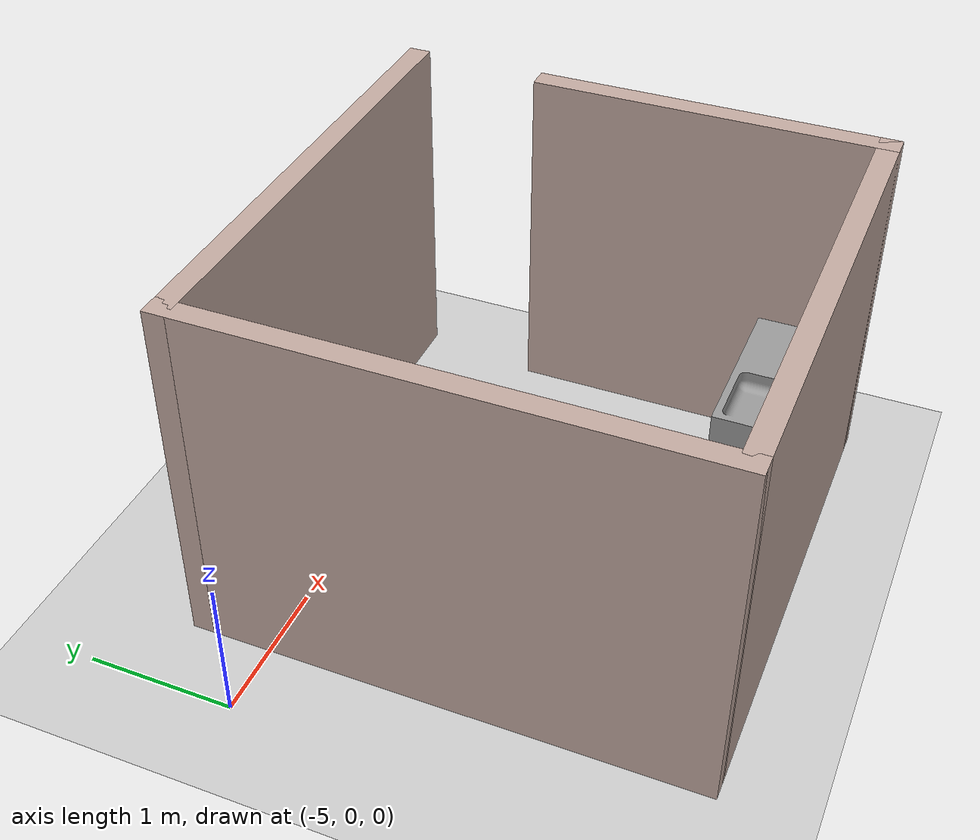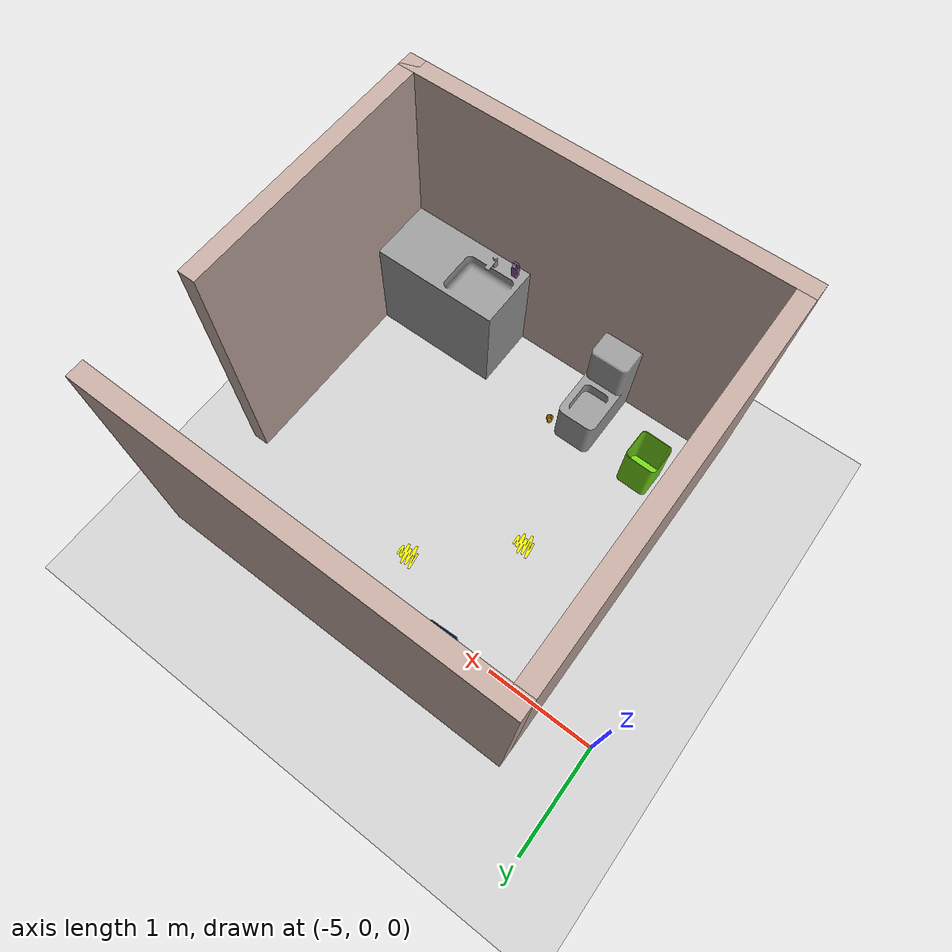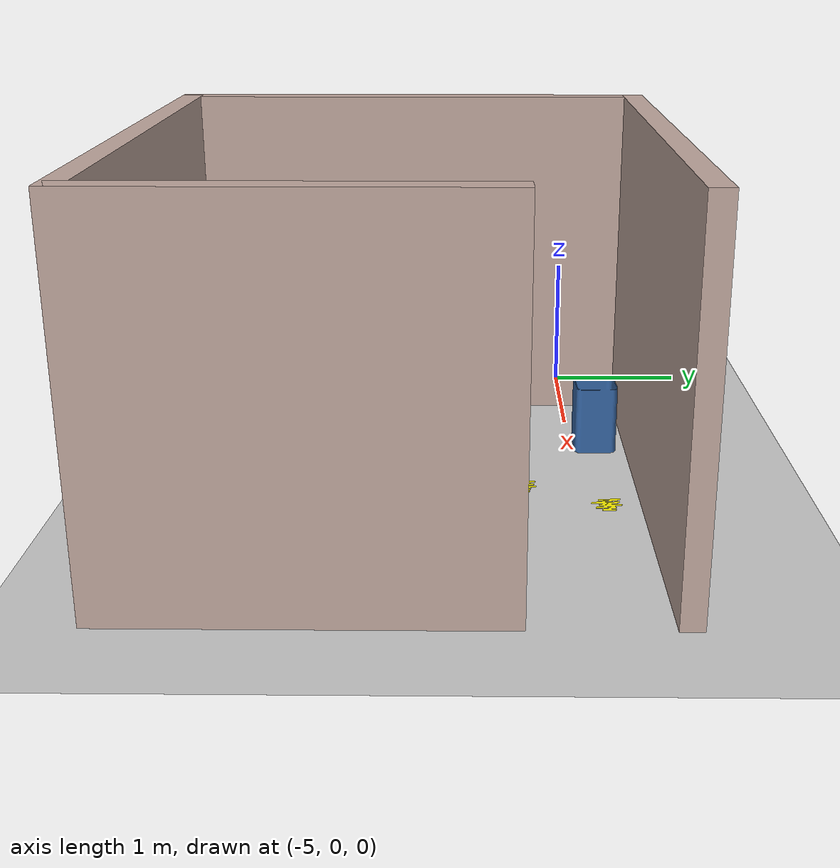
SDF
<sdf version="1.7">
 <world name="default">
  <light name="sun" type="directional">
   <pose>0 0 10 0 -0 0</pose>
   <diffuse>0.8 0.8 0.8 1</diffuse>
   <specular>0.2 0.2 0.2 1</specular>
   <attenuation>
    <range>1000</range>
    <constant>0.9</constant>
    <linear>0.01</linear>
    <quadratic>0.001</quadratic>
   </attenuation>
   <direction>-0.5 0.1 -0.9</direction>
   <spot><inner_angle>0</inner_angle><outer_angle>0</outer_angle><falloff>0</falloff></spot>
  </light>
  <model name="ground_plane">
   <static>1</static>
   <link name="link">
    <collision name="collision">
     <geometry><plane><normal>0 0 1</normal><size>100 100</size></plane></geometry>
     <surface>
      <contact><collide_bitmask>65535</collide_bitmask></contact>
      <friction><ode><mu>100</mu><mu2>50</mu2></ode></friction>
     </surface>
    </collision>
    <visual name="visual">
     <cast_shadows>0</cast_shadows>
     <geometry><plane><normal>0 0 1</normal><size>100 100</size></plane></geometry>
     <material>
      <script><uri>file://media/materials/scripts/gazebo.material</uri><name>Gazebo/Grey</name></script>
     </material>
    </visual>
   </link>
  </model>
  <gravity>0 0 -9.8</gravity>
  <magnetic_field>6e-06 2.3e-05 -4.2e-05</magnetic_field>
  <atmosphere type="adiabatic"/>
  <physics type="ode">
   <max_step_size>0.001</max_step_size>
   <real_time_factor>1</real_time_factor>
   <real_time_update_rate>1000</real_time_update_rate>
  </physics>
  <scene><ambient>0.4 0.4 0.4 1</ambient><background>0.7 0.7 0.7 1</background><shadows>1</shadows></scene>
  <spherical_coordinates>
   <surface_model>EARTH_WGS84</surface_model>
   <latitude_deg>0</latitude_deg>
   <longitude_deg>0</longitude_deg>
   <elevation>0</elevation>
   <heading_deg>0</heading_deg>
  </spherical_coordinates>
  <model name="walls2">
   <pose>-2.36575 0.320147 -0 0 -0 0</pose>
   <link name="Wall_0">
    <collision name="Wall_0_Collision">
     <geometry><box><size>3.5 0.15 2.5</size></box></geometry>
     <pose>0 0 1.25 0 -0 0</pose>
    </collision>
    <visual name="Wall_0_Visual">
     <pose>0 0 1.25 0 -0 0</pose>
     <geometry><box><size>3.5 0.15 2.5</size></box></geometry>
     <material>
      <script><uri>file://media/materials/scripts/gazebo.material</uri><name>Gazebo/Grey</name></script>
      <ambient>0.760784 0.662745 0.627451 1</ambient>
     </material>
     <meta><layer>0</layer></meta>
    </visual>
    <pose>-0.3875 0.1625 0 0 -0 3.14159</pose>
   </link>
   <link name="Wall_1">
    <collision name="Wall_1_Collision">
     <geometry><box><size>3.5 0.15 2.5</size></box></geometry>
     <pose>0 0 1.25 0 -0 0</pose>
    </collision>
    <visual name="Wall_1_Visual">
     <pose>0 0 1.25 0 -0 0</pose>
     <geometry><box><size>3.5 0.15 2.5</size></box></geometry>
     <material>
      <script><uri>file://media/materials/scripts/gazebo.material</uri><name>Gazebo/Grey</name></script>
      <ambient>0.760784 0.662745 0.627451 1</ambient>
     </material>
     <meta><layer>0</layer></meta>
    </visual>
    <pose>-2.0625 -1.5125 0 0 -0 -1.5708</pose>
   </link>
   <link name="Wall_2">
    <collision name="Wall_2_Collision">
     <geometry><box><size>3.5 0.15 2.5</size></box></geometry>
     <pose>0 0 1.25 0 -0 0</pose>
    </collision>
    <visual name="Wall_2_Visual">
     <pose>0 0 1.25 0 -0 0</pose>
     <geometry><box><size>3.5 0.15 2.5</size></box></geometry>
     <material>
      <script><uri>file://media/materials/scripts/gazebo.material</uri><name>Gazebo/Grey</name></script>
      <ambient>0.760784 0.662745 0.627451 1</ambient>
     </material>
     <meta><layer>0</layer></meta>
    </visual>
    <pose>-0.3875 -3.1875 0 0 -0 0</pose>
   </link>
   <link name="Wall_3">
    <collision name="Wall_3_Collision">
     <geometry><box><size>2.5 0.15 2.5</size></box></geometry>
     <pose>0 0 1.25 0 -0 0</pose>
    </collision>
    <visual name="Wall_3_Visual">
     <pose>0 0 1.25 0 -0 0</pose>
     <geometry><box><size>2.5 0.15 2.5</size></box></geometry>
     <material>
      <script><uri>file://media/materials/scripts/gazebo.material</uri><name>Gazebo/Grey</name></script>
      <ambient>0.760784 0.662745 0.627451 1</ambient>
     </material>
     <meta><layer>0</layer></meta>
    </visual>
    <pose>1.2875 -2.0125 0 0 -0 1.5708</pose>
   </link>
   <static>1</static>
  </model>
  <model name="bathroom_models2">
   <link name="link_0">
    <inertial>
     <mass>500</mass>
     <inertia>
      <ixx>0.166667</ixx>
      <ixy>0</ixy>
      <ixz>0</ixz>
      <iyy>0.166667</iyy>
      <iyz>0</iyz>
      <izz>0.166667</izz>
     </inertia>
    </inertial>
    <pose>0.79841 -0.020075 0 0 -0 0</pose>
    <visual name="visual">
     <geometry><mesh><uri>model://stl/counter2.stl</uri><scale>1 1 1</scale></mesh></geometry>
     <material>
      <lighting>1</lighting>
      <script><uri>file://media/materials/scripts/gazebo.material</uri><name>Gazebo/Grey</name></script>
      <shader type="pixel"><normal_map>__default__</normal_map></shader>
      <ambient>0.729 0.741 0.714 1</ambient>
      <diffuse>0.827 0.843 0.812 1</diffuse>
      <specular>0.01 0.01 0.01 1</specular>
      <emissive>0 0 0 1</emissive>
     </material>
    </visual>
    <collision name="collision">
     <geometry><mesh><uri>model://stl/counter2.stl</uri><scale>1 1 1</scale></mesh></geometry>
     <surface>
      <friction>
       <ode><mu>1</mu><mu2>1</mu2><fdir1>0 0 0</fdir1><slip1>0</slip1><slip2>0</slip2></ode>
       <torsional>
        <coefficient>1</coefficient>
        <patch_radius>0</patch_radius>
        <surface_radius>0</surface_radius>
        <use_patch_radius>1</use_patch_radius>
        <ode><slip>0</slip></ode>
       </torsional>
      </friction>
      <bounce><restitution_coefficient>0</restitution_coefficient><threshold>1e+06</threshold></bounce>
      <contact>
       <collide_without_contact>0</collide_without_contact>
       <collide_without_contact_bitmask>1</collide_without_contact_bitmask>
       <collide_bitmask>1</collide_bitmask>
       <ode>
        <soft_cfm>0</soft_cfm>
        <soft_erp>0.2</soft_erp>
        <kp>1e+13</kp>
        <kd>1</kd>
        <max_vel>0.01</max_vel>
        <min_depth>0</min_depth>
       </ode>
       <bullet>
        <split_impulse>1</split_impulse>
        <split_impulse_penetration_threshold>-0.01</split_impulse_penetration_threshold>
        <soft_cfm>0</soft_cfm>
        <soft_erp>0.2</soft_erp>
        <kp>1e+13</kp>
        <kd>1</kd>
       </bullet>
      </contact>
     </surface>
    </collision>
   </link>
   <link name="link_1">
    <inertial>
     <mass>500</mass>
     <inertia>
      <ixx>0.166667</ixx>
      <ixy>0</ixy>
      <ixz>0</ixz>
      <iyy>0.166667</iyy>
      <iyz>0</iyz>
      <izz>0.166667</izz>
     </inertia>
    </inertial>
    <pose>-0.79841 0.020075 0 0 -0 0</pose>
    <visual name="visual">
     <geometry><mesh><uri>model://stl/commode2.stl</uri><scale>1 1 1</scale></mesh></geometry>
     <material>
      <lighting>1</lighting>
      <script><uri>file://media/materials/scripts/gazebo.material</uri><name>Gazebo/Grey</name></script>
      <shader type="pixel"><normal_map>__default__</normal_map></shader>
      <ambient>0.729 0.741 0.714 1</ambient>
      <diffuse>0.827 0.843 0.812 1</diffuse>
      <specular>0.01 0.01 0.01 1</specular>
      <emissive>0 0 0 1</emissive>
     </material>
    </visual>
    <collision name="collision">
     <geometry><mesh><uri>model://stl/commode2.stl</uri><scale>1 1 1</scale></mesh></geometry>
     <surface>
      <friction>
       <ode><mu>1</mu><mu2>1</mu2><fdir1>0 0 0</fdir1><slip1>0</slip1><slip2>0</slip2></ode>
       <torsional>
        <coefficient>1</coefficient>
        <patch_radius>0</patch_radius>
        <surface_radius>0</surface_radius>
        <use_patch_radius>1</use_patch_radius>
        <ode><slip>0</slip></ode>
       </torsional>
      </friction>
      <bounce><restitution_coefficient>0</restitution_coefficient><threshold>1e+06</threshold></bounce>
      <contact>
       <collide_without_contact>0</collide_without_contact>
       <collide_without_contact_bitmask>1</collide_without_contact_bitmask>
       <collide_bitmask>1</collide_bitmask>
       <ode>
        <soft_cfm>0</soft_cfm>
        <soft_erp>0.2</soft_erp>
        <kp>1e+13</kp>
        <kd>1</kd>
        <max_vel>0.01</max_vel>
        <min_depth>0</min_depth>
       </ode>
       <bullet>
        <split_impulse>1</split_impulse>
        <split_impulse_penetration_threshold>-0.01</split_impulse_penetration_threshold>
        <soft_cfm>0</soft_cfm>
        <soft_erp>0.2</soft_erp>
        <kp>1e+13</kp>
        <kd>1</kd>
       </bullet>
      </contact>
     </surface>
    </collision>
   </link>
   <static>0</static>
   <pose>-2.5535 -2.47173 0 0 -0 0</pose>
  </model>
  <light type="directional" name="bathroom_light">
   <pose>-2.631701 -0.670522 2.511903 0 -0 0</pose>
   <diffuse>0.1 0.1 0.1 1</diffuse>
   <specular>0.2 0.2 0.2 1</specular>
   <attenuation>
    <range>50</range>
    <constant>0.9</constant>
    <linear>0.01</linear>
    <quadratic>0.001</quadratic>
   </attenuation>
   <direction>-0.109764 0.109764 -0.987878</direction>
   <spot><inner_angle>0</inner_angle><outer_angle>0</outer_angle><falloff>0</falloff></spot>
  </light>
  <include>
   <uri>model://paper_cup</uri>
   <name>paper_cup1</name>
   <pose>-3.08013 -2.19304 0.007713 0 0.0 0.0</pose>
  </include>
  <include>
   <uri>model://bot_bin</uri>
   <name>bin_1</name>
   <pose>-3.565656 0.182616 -0.000003 -0.000051 0.000031 0.036442</pose>
  </include>
  <include>
   <uri>model://human_bin</uri>
   <name>bin_2</name>
   <pose>-4.031028 -2.227502 -0.000011 0 -0.00000 -0.022300</pose>
  </include>
  <include>
   <static>1</static>
   <uri>model://soap_dispenser</uri>
   <name>soap_1</name>
   <pose>-2.254753 -2.699281 1.007372 0.000 -0.004538 0</pose>
  </include>
  <include><uri>model://marking</uri><name>marker_1</name><pose>-2.83099 -0.379102 0 0 -0 0</pose></include>
  <include><uri>model://marking</uri><name>marker_2</name><pose>-1.35473 -2.30194 0 0 -0 0</pose></include>
  <include><uri>model://marking</uri><name>marker_3</name><pose>-3.58165 -1.06118 0 0 -0 0</pose></include>
  <include><uri>model://marking</uri><name>marker_4</name><pose>-2.55525 0.188426 0 0 -0 0</pose></include>
 </world>
</sdf>

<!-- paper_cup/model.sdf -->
<sdf version='1.7'>
  <model name='paper_cup'>
    <link name='link_0'>
      <inertial>
        <mass>0.39</mass>
        <inertia>
          <ixx>0.166667</ixx>
          <ixy>0</ixy>
          <ixz>0</ixz>
          <iyy>0.166667</iyy>
          <iyz>0</iyz>
          <izz>0.166667</izz>
        </inertia>
        <pose>0 0 0 0 -0 0</pose>
      </inertial>
      <pose>0 0 0 0 -0 0</pose>
      <gravity>1</gravity>
      <self_collide>0</self_collide>
      <kinematic>0</kinematic>
      <enable_wind>0</enable_wind>
      <visual name='visual'>
        <pose>0 0 0 0 -0 0</pose>
        <geometry>
          <mesh>
            <uri>model://stl/paper_cup.stl</uri>
            <scale>1 1 1</scale>
          </mesh>
        </geometry>
        <material>
          <lighting>1</lighting>
          <script>
            <uri>file://media/materials/scripts/gazebo.material</uri>
            <name>Gazebo/Grey</name>
          </script>
          <shader type='pixel'>
            <normal_map>__default__</normal_map>
          </shader>
          <ambient>0.757 0.49 0.067 1</ambient>
          <diffuse>0.757 0.49 0.067 1</diffuse>
          <specular>0.01 0.01 0.01 1</specular>
          <emissive>0 0 0 1</emissive>
        </material>
        <transparency>0</transparency>
        <cast_shadows>1</cast_shadows>
      </visual>
      <collision name='collision'>
        <laser_retro>0</laser_retro>
        <max_contacts>10</max_contacts>
        <pose>0 0 0 0 -0 0</pose>
        <geometry>
          <mesh>
            <uri>model://stl/paper_cup.stl</uri>
            <scale>1 1 1</scale>
          </mesh>
        </geometry>
        <surface>
          <friction>
            <ode>
              <mu>1</mu>
              <mu2>1</mu2>
              <fdir1>0 0 0</fdir1>
              <slip1>0</slip1>
              <slip2>0</slip2>
            </ode>
            <torsional>
              <coefficient>1</coefficient>
              <patch_radius>0</patch_radius>
              <surface_radius>0</surface_radius>
              <use_patch_radius>1</use_patch_radius>
              <ode>
                <slip>0</slip>
              </ode>
            </torsional>
          </friction>
          <bounce>
            <restitution_coefficient>0</restitution_coefficient>
            <threshold>1e+06</threshold>
          </bounce>
          <contact>
            <collide_without_contact>0</collide_without_contact>
            <collide_without_contact_bitmask>1</collide_without_contact_bitmask>
            <collide_bitmask>1</collide_bitmask>
            <ode>
              <soft_cfm>0</soft_cfm>
              <soft_erp>0.2</soft_erp>
              <kp>1e+07</kp>
              <kd>1</kd>
              <max_vel>0.1</max_vel>
              <min_depth>0.001</min_depth>
            </ode>
            <bullet>
              <split_impulse>1</split_impulse>
              <split_impulse_penetration_threshold>-0.01</split_impulse_penetration_threshold>
              <soft_cfm>0</soft_cfm>
              <soft_erp>0.2</soft_erp>
              <kp>1e+07</kp>
              <kd>1</kd>
            </bullet>
          </contact>
        </surface>
      </collision>
    </link>
    <static>0</static>
    <allow_auto_disable>1</allow_auto_disable>
  </model>
</sdf>

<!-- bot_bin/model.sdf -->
<sdf version='1.6'>
  <model name='bot_bin'>
    <link name='link_1'>
      <inertial>
        <mass>1</mass>
        <inertia>
          <ixx>0.166667</ixx>
          <ixy>0</ixy>
          <ixz>0</ixz>
          <iyy>0.166667</iyy>
          <iyz>0</iyz>
          <izz>0.166667</izz>
        </inertia>
        <pose frame=''>0 0 0 0 -0 0</pose>
      </inertial>
      <pose frame=''>0 -0 0 0 -0 0</pose>
      <gravity>1</gravity>
      <self_collide>0</self_collide>
      <kinematic>0</kinematic>
      <enable_wind>0</enable_wind>
      <visual name='visual'>
        <pose frame=''>0 0 0 0 -0 0</pose>
        <geometry>
          <mesh>
            <uri>model://stl/dustbin.stl</uri>
            <scale>1 1 1</scale>
          </mesh>
        </geometry>
        <material>
          <lighting>1</lighting>
          <script>
            <uri>file://media/materials/scripts/gazebo.material</uri>
            <name>Gazebo/Grey</name>
          </script>
          <ambient>0.125 0.29 0.529 1</ambient>
          <shader type='vertex'>
            <normal_map>__default__</normal_map>
          </shader>
          <diffuse>0.204 0.396 0.643 1</diffuse>
          <specular>0.01 0.01 0.01 1</specular>
          <emissive>0 0 0 1</emissive>
        </material>
        <transparency>0</transparency>
        <cast_shadows>1</cast_shadows>
      </visual>
      <collision name='collision'>
        <laser_retro>0</laser_retro>
        <max_contacts>10</max_contacts>
        <pose frame=''>0 0 0 0 -0 0</pose>
        <geometry>
          <mesh>
            <uri>model://stl/dustbin.stl</uri>
            <scale>1 1 1</scale>
          </mesh>
        </geometry>
        <surface>
          <friction>
            <ode>
              <mu>1</mu>
              <mu2>1</mu2>
              <fdir1>0 0 0</fdir1>
              <slip1>0</slip1>
              <slip2>0</slip2>
            </ode>
            <torsional>
              <coefficient>1</coefficient>
              <patch_radius>0</patch_radius>
              <surface_radius>0</surface_radius>
              <use_patch_radius>1</use_patch_radius>
              <ode>
                <slip>0</slip>
              </ode>
            </torsional>
          </friction>
          <bounce>
            <restitution_coefficient>0</restitution_coefficient>
            <threshold>1e+06</threshold>
          </bounce>
          <contact>
            <collide_without_contact>0</collide_without_contact>
            <collide_without_contact_bitmask>1</collide_without_contact_bitmask>
            <collide_bitmask>1</collide_bitmask>
            <ode>
              <soft_cfm>0</soft_cfm>
              <soft_erp>0.2</soft_erp>
              <kp>1e+13</kp>
              <kd>1</kd>
              <max_vel>0.01</max_vel>
              <min_depth>0</min_depth>
            </ode>
            <bullet>
              <split_impulse>1</split_impulse>
              <split_impulse_penetration_threshold>-0.01</split_impulse_penetration_threshold>
              <soft_cfm>0</soft_cfm>
              <soft_erp>0.2</soft_erp>
              <kp>1e+13</kp>
              <kd>1</kd>
            </bullet>
          </contact>
        </surface>
      </collision>
    </link>
    <static>0</static>
    <allow_auto_disable>1</allow_auto_disable>
  </model>
</sdf>

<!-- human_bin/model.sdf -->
<sdf version='1.6'>
  <model name='human_bin'>
    <link name='link_0'>
      <inertial>
        <mass>1</mass>
        <inertia>
          <ixx>0.166667</ixx>
          <ixy>0</ixy>
          <ixz>0</ixz>
          <iyy>0.166667</iyy>
          <iyz>0</iyz>
          <izz>0.166667</izz>
        </inertia>
        <pose frame=''>0 0 0 0 -0 0</pose>
      </inertial>
      <pose frame=''>0 -0 0 0 -0 0</pose>
      <gravity>1</gravity>
      <self_collide>0</self_collide>
      <kinematic>0</kinematic>
      <enable_wind>0</enable_wind>
      <visual name='visual'>
        <pose frame=''>0 0 0 0 -0 0</pose>
        <geometry>
          <mesh>
            <uri>model://stl/dustbin.stl</uri>
            <scale>1 1 1</scale>
          </mesh>
        </geometry>
        <material>
          <lighting>1</lighting>
          <script>
            <uri>file://media/materials/scripts/gazebo.material</uri>
            <name>Gazebo/Grey</name>
          </script>
          <ambient>0.306 0.604 0.024 1</ambient>
          <shader type='vertex'>
            <normal_map>__default__</normal_map>
          </shader>
          <diffuse>0.451 0.824 0.086 1</diffuse>
          <specular>0.01 0.01 0.01 1</specular>
          <emissive>0 0 0 1</emissive>
        </material>
        <transparency>0</transparency>
        <cast_shadows>1</cast_shadows>
      </visual>
      <collision name='collision'>
        <laser_retro>0</laser_retro>
        <max_contacts>10</max_contacts>
        <pose frame=''>0 0 0 0 -0 0</pose>
        <geometry>
          <mesh>
            <uri>model://stl/dustbin.stl</uri>
            <scale>1 1 1</scale>
          </mesh>
        </geometry>
        <surface>
          <friction>
            <ode>
              <mu>1</mu>
              <mu2>1</mu2>
              <fdir1>0 0 0</fdir1>
              <slip1>0</slip1>
              <slip2>0</slip2>
            </ode>
            <torsional>
              <coefficient>1</coefficient>
              <patch_radius>0</patch_radius>
              <surface_radius>0</surface_radius>
              <use_patch_radius>1</use_patch_radius>
              <ode>
                <slip>0</slip>
              </ode>
            </torsional>
          </friction>
          <bounce>
            <restitution_coefficient>0</restitution_coefficient>
            <threshold>1e+06</threshold>
          </bounce>
          <contact>
            <collide_without_contact>0</collide_without_contact>
            <collide_without_contact_bitmask>1</collide_without_contact_bitmask>
            <collide_bitmask>1</collide_bitmask>
            <ode>
              <soft_cfm>0</soft_cfm>
              <soft_erp>0.2</soft_erp>
              <kp>1e+13</kp>
              <kd>1</kd>
              <max_vel>0.01</max_vel>
              <min_depth>0</min_depth>
            </ode>
            <bullet>
              <split_impulse>1</split_impulse>
              <split_impulse_penetration_threshold>-0.01</split_impulse_penetration_threshold>
              <soft_cfm>0</soft_cfm>
              <soft_erp>0.2</soft_erp>
              <kp>1e+13</kp>
              <kd>1</kd>
            </bullet>
          </contact>
        </surface>
      </collision>
    </link>
    <static>0</static>
    <allow_auto_disable>1</allow_auto_disable>
  </model>
</sdf>

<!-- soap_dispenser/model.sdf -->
<sdf version='1.7'>
  <model name='soap_dispenser'>
    <link name='link_1'>
      <inertial>
        <mass>0.39</mass>
        <inertia>
          <ixx>0.166667</ixx>
          <ixy>0</ixy>
          <ixz>0</ixz>
          <iyy>0.166667</iyy>
          <iyz>0</iyz>
          <izz>0.166667</izz>
        </inertia>
        <pose>0 0 0 0 -0 0</pose>
      </inertial>
      <pose>-0 -0 0 0 -0 0</pose>
      <gravity>1</gravity>
      <self_collide>0</self_collide>
      <kinematic>0</kinematic>
      <enable_wind>0</enable_wind>
      <visual name='visual'>
        <pose>0 0 0 0 -0 0</pose>
        <geometry>
          <mesh>
            <uri>model://stl/soap_dispenser.stl</uri>
            <scale>1 1 1</scale>
          </mesh>
        </geometry>
        <material>
          <lighting>1</lighting>
          <script>
            <uri>file://media/materials/scripts/gazebo.material</uri>
            <name>Gazebo/Grey</name>
          </script>
          <shader type='pixel'>
            <normal_map>__default__</normal_map>
          </shader>
          <ambient>0.459 0.314 0.482 1</ambient>
          <diffuse>0.459 0.314 0.482 1</diffuse>
          <specular>0.01 0.01 0.01 1</specular>
          <emissive>0 0 0 1</emissive>
        </material>
        <transparency>0</transparency>
        <cast_shadows>1</cast_shadows>
      </visual>
      <collision name='collision'>
        <laser_retro>0</laser_retro>
        <max_contacts>10</max_contacts>
        <pose>0 0 0 0 -0 0</pose>
        <geometry>
          <mesh>
            <uri>model://stl/soap_dispenser.stl</uri>
            <scale>1 1 1</scale>
          </mesh>
        </geometry>
        <surface>
          <friction>
            <ode>
              <mu>1</mu>
              <mu2>1</mu2>
              <fdir1>0 0 0</fdir1>
              <slip1>0</slip1>
              <slip2>0</slip2>
            </ode>
            <torsional>
              <coefficient>1</coefficient>
              <patch_radius>0</patch_radius>
              <surface_radius>0</surface_radius>
              <use_patch_radius>1</use_patch_radius>
              <ode>
                <slip>0</slip>
              </ode>
            </torsional>
          </friction>
          <bounce>
            <restitution_coefficient>0</restitution_coefficient>
            <threshold>1e+06</threshold>
          </bounce>
          <contact>
            <collide_without_contact>0</collide_without_contact>
            <collide_without_contact_bitmask>1</collide_without_contact_bitmask>
            <collide_bitmask>1</collide_bitmask>
            <ode>
              <soft_cfm>0</soft_cfm>
              <soft_erp>0.2</soft_erp>
              <kp>1e+07</kp>
              <kd>1</kd>
              <max_vel>0.1</max_vel>
              <min_depth>0.001</min_depth>
            </ode>
            <bullet>
              <split_impulse>1</split_impulse>
              <split_impulse_penetration_threshold>-0.01</split_impulse_penetration_threshold>
              <soft_cfm>0</soft_cfm>
              <soft_erp>0.2</soft_erp>
              <kp>1e+07</kp>
              <kd>1</kd>
            </bullet>
          </contact>
        </surface>
      </collision>
    </link>
    <static>0</static>
    <allow_auto_disable>1</allow_auto_disable>
  </model>
</sdf>

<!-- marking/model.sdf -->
<sdf version='1.7'>
  <model name='marking'>
    <link name='link'>
      <self_collide>0</self_collide>
      <enable_wind>0</enable_wind>
      <kinematic>0</kinematic>
      <pose>0 0 0 0 -0 0</pose>
      <gravity>1</gravity>
      <inertial>
        <mass>1</mass>
        <pose>0 0 0 0 -0 0</pose>
        <inertia>
          <ixx>1</ixx>
          <ixy>0</ixy>
          <ixz>0</ixz>
          <iyy>1</iyy>
          <iyz>0</iyz>
          <izz>1</izz>
        </inertia>
      </inertial>
      <visual name='visual'>
        <geometry>
          <mesh>
            <scale>0.001 0.001 0.001</scale>
            <uri>model://marking/meshes/marking.stl</uri>
          </mesh>
        </geometry>
        <material>
          <lighting>1</lighting>
          <script>
            <uri>file://media/materials/scripts/gazebo.material</uri>
            <name>Gazebo/Grey</name>
          </script>
          <shader type='pixel'>
            <normal_map>__default__</normal_map>
          </shader>
          <ambient>1 0.961 0 1</ambient>
          <diffuse>1 0.961 0 1</diffuse>
          <specular>0.01 0.01 0.01 1</specular>
          <emissive>0 0 0 1</emissive>
        </material>
        <pose>0 0 0 0 -0 0</pose>
        <transparency>0</transparency>
        <cast_shadows>1</cast_shadows>
      </visual>
    </link>
    <static>1</static>
    <allow_auto_disable>1</allow_auto_disable>
  </model>
</sdf>
